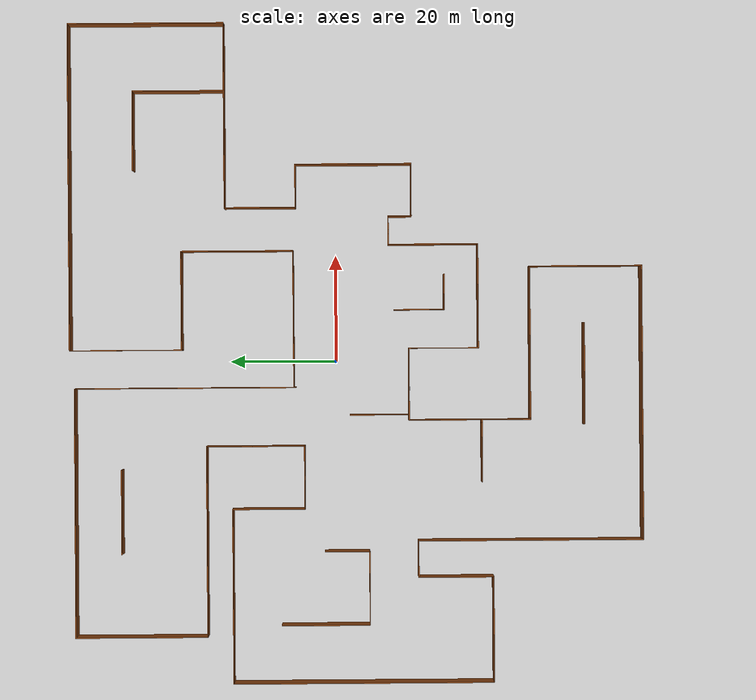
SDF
<sdf version="1.7">
 <world name="default">
  <light name="sun" type="directional">
   <pose>0 0 10 0 0 0</pose>
   <diffuse>1 1 1 1</diffuse>
   <specular>0.5 0.5 0.5 1</specular>
   <attenuation>
    <range>1000</range>
    <constant>1.0</constant>
    <linear>0.0</linear>
    <quadratic>0.0001</quadratic>
   </attenuation>
   <direction>-0.5 0.1 -0.9</direction>
  </light>
  <model name="ground_plane">
   <static>true</static>
   <link name="link">
    <collision name="collision">
     <geometry><plane><normal>0 0 1</normal><size>100 100</size></plane></geometry>
    </collision>
    <visual name="visual">
     <geometry><plane><normal>0 0 1</normal><size>100 100</size></plane></geometry>
     <material>
      <ambient>0.7 0.7 0.7 1</ambient>
      <diffuse>0.8 0.8 0.8 1</diffuse>
      <specular>0.3 0.3 0.3 1</specular>
     </material>
    </visual>
   </link>
  </model>
  <gravity>0 0 -9.8</gravity>
  <magnetic_field>6e-06 2.3e-05 -4.2e-05</magnetic_field>
  <atmosphere type="adiabatic"/>
  <scene><ambient>0.4 0.4 0.4 1</ambient><background>0.7 0.7 0.7 1</background><shadows>1</shadows></scene>
  <audio><device>default</device></audio>
  <spherical_coordinates>
   <surface_model>EARTH_WGS84</surface_model>
   <latitude_deg>0</latitude_deg>
   <longitude_deg>0</longitude_deg>
   <elevation>0</elevation>
   <heading_deg>0</heading_deg>
  </spherical_coordinates>
  <model name="Untitled">
   <pose>1.63712 -3.71741 0 0 -0 0</pose>
   <link name="Wall_0">
    <collision name="Wall_0_Collision">
     <geometry><box><size>13.25 0.15 2.5</size></box></geometry>
     <pose>0 0 1.25 0 -0 0</pose>
    </collision>
    <visual name="Wall_0_Visual">
     <pose>0 0 1.25 0 -0 0</pose>
     <geometry><box><size>13.25 0.15 2.5</size></box></geometry>
     <material>
      <ambient>0.55 0.27 0.07 1</ambient>
      <diffuse>0.55 0.27 0.07 1</diffuse>
      <specular>0.2 0.2 0.2 1</specular>
      <emissive>0 0 0 1</emissive>
     </material>
     <meta><layer>0</layer></meta>
    </visual>
    <pose>0.725003 -16.55 0 0 -0 -1.5708</pose>
   </link>
   <link name="Wall_1">
    <collision name="Wall_1_Collision">
     <geometry><box><size>19.75 0.15 2.5</size></box></geometry>
     <pose>0 0 1.25 0 -0 0</pose>
    </collision>
    <visual name="Wall_1_Visual">
     <pose>0 0 1.25 0 -0 0</pose>
     <geometry><box><size>19.75 0.15 2.5</size></box></geometry>
     <material>
      <ambient>0.55 0.27 0.07 1</ambient>
      <diffuse>0.55 0.27 0.07 1</diffuse>
      <specular>0.2 0.2 0.2 1</specular>
      <emissive>0 0 0 1</emissive>
     </material>
     <meta><layer>0</layer></meta>
    </visual>
    <pose>10.525 -23.1 0 0 -0 0</pose>
   </link>
   <link name="Wall_10">
    <collision name="Wall_10_Collision">
     <geometry><box><size>29.5 0.15 2.5</size></box></geometry>
     <pose>0 0 1.25 0 -0 0</pose>
    </collision>
    <visual name="Wall_10_Visual">
     <pose>0 0 1.25 0 -0 0</pose>
     <geometry><box><size>29.5 0.15 2.5</size></box></geometry>
     <material>
      <ambient>0.55 0.27 0.07 1</ambient>
      <diffuse>0.55 0.27 0.07 1</diffuse>
      <specular>0.2 0.2 0.2 1</specular>
      <emissive>0 0 0 1</emissive>
     </material>
     <meta><layer>0</layer></meta>
    </visual>
    <pose>62.275 39.275 0 0 -0 1.5708</pose>
   </link>
   <link name="Wall_11">
    <collision name="Wall_11_Collision">
     <geometry><box><size>61.75 0.15 2.5</size></box></geometry>
     <pose>0 0 1.25 0 -0 0</pose>
    </collision>
    <visual name="Wall_11_Visual">
     <pose>0 0 1.25 0 -0 0</pose>
     <geometry><box><size>61.75 0.15 2.5</size></box></geometry>
     <material>
      <ambient>0.55 0.27 0.07 1</ambient>
      <diffuse>0.55 0.27 0.07 1</diffuse>
      <specular>0.2 0.2 0.2 1</specular>
      <emissive>0 0 0 1</emissive>
     </material>
     <meta><layer>0</layer></meta>
    </visual>
    <pose>31.475 53.95 0 0 -0 3.14159</pose>
   </link>
   <link name="Wall_12">
    <collision name="Wall_12_Collision">
     <geometry><box><size>21.25 0.15 2.5</size></box></geometry>
     <pose>0 0 1.25 0 -0 0</pose>
    </collision>
    <visual name="Wall_12_Visual">
     <pose>0 0 1.25 0 -0 0</pose>
     <geometry><box><size>21.25 0.15 2.5</size></box></geometry>
     <material>
      <ambient>0.55 0.27 0.07 1</ambient>
      <diffuse>0.55 0.27 0.07 1</diffuse>
      <specular>0.2 0.2 0.2 1</specular>
      <emissive>0 0 0 1</emissive>
     </material>
     <meta><layer>0</layer></meta>
    </visual>
    <pose>0.675003 43.4 0 0 -0 -1.5708</pose>
   </link>
   <link name="Wall_13">
    <collision name="Wall_13_Collision">
     <geometry><box><size>18.75 0.15 2.5</size></box></geometry>
     <pose>0 0 1.25 0 -0 0</pose>
    </collision>
    <visual name="Wall_13_Visual">
     <pose>0 0 1.25 0 -0 0</pose>
     <geometry><box><size>18.75 0.15 2.5</size></box></geometry>
     <material>
      <ambient>0.55 0.27 0.07 1</ambient>
      <diffuse>0.55 0.27 0.07 1</diffuse>
      <specular>0.2 0.2 0.2 1</specular>
      <emissive>0 0 0 1</emissive>
     </material>
     <meta><layer>0</layer></meta>
    </visual>
    <pose>9.975 32.85 0 0 -0 0</pose>
   </link>
   <link name="Wall_14">
    <collision name="Wall_14_Collision">
     <geometry><box><size>21.25 0.15 2.5</size></box></geometry>
     <pose>0 0 1.25 0 -0 0</pose>
    </collision>
    <visual name="Wall_14_Visual">
     <pose>0 0 1.25 0 -0 0</pose>
     <geometry><box><size>21.25 0.15 2.5</size></box></geometry>
     <material>
      <ambient>0.55 0.27 0.07 1</ambient>
      <diffuse>0.55 0.27 0.07 1</diffuse>
      <specular>0.2 0.2 0.2 1</specular>
      <emissive>0 0 0 1</emissive>
     </material>
     <meta><layer>0</layer></meta>
    </visual>
    <pose>19.275 22.3 0 0 -0 -1.5708</pose>
   </link>
   <link name="Wall_15">
    <collision name="Wall_15_Collision">
     <geometry><box><size>25.9491 0.15 2.5</size></box></geometry>
     <pose>0 0 1.25 0 -0 0</pose>
    </collision>
    <visual name="Wall_15_Visual">
     <pose>0 0 1.25 0 -0 0</pose>
     <geometry><box><size>25.9491 0.15 2.5</size></box></geometry>
     <material>
      <ambient>0.55 0.27 0.07 1</ambient>
      <diffuse>0.55 0.27 0.07 1</diffuse>
      <specular>0.2 0.2 0.2 1</specular>
      <emissive>0 0 0 1</emissive>
     </material>
     <meta><layer>0</layer></meta>
    </visual>
    <pose>6.37547 11.7348 0 0 -0 -3.14041</pose>
   </link>
   <link name="Wall_16">
    <collision name="Wall_16_Collision">
     <geometry><box><size>41.5 0.15 2.5</size></box></geometry>
     <pose>0 0 1.25 0 -0 0</pose>
    </collision>
    <visual name="Wall_16_Visual">
     <pose>0 0 1.25 0 -0 0</pose>
     <geometry><box><size>41.5 0.15 2.5</size></box></geometry>
     <material>
      <ambient>0.55 0.27 0.07 1</ambient>
      <diffuse>0.55 0.27 0.07 1</diffuse>
      <specular>0.2 0.2 0.2 1</specular>
      <emissive>0 0 0 1</emissive>
     </material>
     <meta><layer>0</layer></meta>
    </visual>
    <pose>-6.52407 32.0654 0 0 -0 1.5708</pose>
   </link>
   <link name="Wall_17">
    <collision name="Wall_17_Collision">
     <geometry><box><size>47.0509 0.15 2.5</size></box></geometry>
     <pose>0 0 1.25 0 -0 0</pose>
    </collision>
    <visual name="Wall_17_Visual">
     <pose>0 0 1.25 0 -0 0</pose>
     <geometry><box><size>47.0509 0.15 2.5</size></box></geometry>
     <material>
      <ambient>0.55 0.27 0.07 1</ambient>
      <diffuse>0.55 0.27 0.07 1</diffuse>
      <specular>0.2 0.2 0.2 1</specular>
      <emissive>0 0 0 1</emissive>
     </material>
     <meta><layer>0</layer></meta>
    </visual>
    <pose>-29.9745 53.0848 0 0 -0 3.14094</pose>
   </link>
   <link name="Wall_176">
    <collision name="Wall_176_Collision">
     <geometry><box><size>9.5 0.15 2.5</size></box></geometry>
     <pose>0 0 1.25 0 -0 0</pose>
    </collision>
    <visual name="Wall_176_Visual">
     <pose>0 0 1.25 0 -0 0</pose>
     <geometry><box><size>9.5 0.15 2.5</size></box></geometry>
     <material>
      <ambient>0.55 0.27 0.07 1</ambient>
      <diffuse>0.55 0.27 0.07 1</diffuse>
      <specular>0.2 0.2 0.2 1</specular>
      <emissive>0 0 0 1</emissive>
     </material>
     <meta><layer>0</layer></meta>
    </visual>
    <pose>8.00819 -12.0175 0 0 -0 -1.5708</pose>
   </link>
   <link name="Wall_177">
    <collision name="Wall_177_Collision">
     <geometry><box><size>6.75 0.15 2.5</size></box></geometry>
     <pose>0 0 1.25 0 -0 0</pose>
    </collision>
    <visual name="Wall_177_Visual">
     <pose>0 0 1.25 0 -0 0</pose>
     <geometry><box><size>6.75 0.15 2.5</size></box></geometry>
     <material>
      <ambient>0.55 0.27 0.07 1</ambient>
      <diffuse>0.55 0.27 0.07 1</diffuse>
      <specular>0.2 0.2 0.2 1</specular>
      <emissive>0 0 0 1</emissive>
     </material>
     <meta><layer>0</layer></meta>
    </visual>
    <pose>11.3082 -16.6925 0 0 -0 0</pose>
   </link>
   <link name="Wall_179">
    <collision name="Wall_179_Collision">
     <geometry><box><size>8.5 0.15 2.5</size></box></geometry>
     <pose>0 0 1.25 0 -0 0</pose>
    </collision>
    <visual name="Wall_179_Visual">
     <pose>0 0 1.25 0 -0 0</pose>
     <geometry><box><size>8.5 0.15 2.5</size></box></geometry>
     <material>
      <ambient>0.55 0.27 0.07 1</ambient>
      <diffuse>0.55 0.27 0.07 1</diffuse>
      <specular>0.2 0.2 0.2 1</specular>
      <emissive>0 0 0 1</emissive>
     </material>
     <meta><layer>0</layer></meta>
    </visual>
    <pose>-37.5082 1.79861 0 0 -0 -1.5708</pose>
   </link>
   <link name="Wall_18">
    <collision name="Wall_18_Collision">
     <geometry><box><size>25 0.15 2.5</size></box></geometry>
     <pose>0 0 1.25 0 -0 0</pose>
    </collision>
    <visual name="Wall_18_Visual">
     <pose>0 0 1.25 0 -0 0</pose>
     <geometry><box><size>25 0.15 2.5</size></box></geometry>
     <material>
      <ambient>0.55 0.27 0.07 1</ambient>
      <diffuse>0.55 0.27 0.07 1</diffuse>
      <specular>0.2 0.2 0.2 1</specular>
      <emissive>0 0 0 1</emissive>
     </material>
     <meta><layer>0</layer></meta>
    </visual>
    <pose>-53.425 40.675 0 0 -0 -1.5708</pose>
   </link>
   <link name="Wall_180">
    <collision name="Wall_180_Collision">
     <geometry><box><size>14 0.15 2.5</size></box></geometry>
     <pose>0 0 1.25 0 -0 0</pose>
    </collision>
    <visual name="Wall_180_Visual">
     <pose>0 0 1.25 0 -0 0</pose>
     <geometry><box><size>14 0.15 2.5</size></box></geometry>
     <material>
      <ambient>0.55 0.27 0.07 1</ambient>
      <diffuse>0.55 0.27 0.07 1</diffuse>
      <specular>0.2 0.2 0.2 1</specular>
      <emissive>0 0 0 1</emissive>
     </material>
     <meta><layer>0</layer></meta>
    </visual>
    <pose>-44.4332 -2.37639 0 0 -0 3.14159</pose>
   </link>
   <link name="Wall_181">
    <collision name="Wall_181_Collision">
     <geometry><box><size>16.75 0.15 2.5</size></box></geometry>
     <pose>0 0 1.25 0 -0 0</pose>
    </collision>
    <visual name="Wall_181_Visual">
     <pose>0 0 1.25 0 -0 0</pose>
     <geometry><box><size>16.75 0.15 2.5</size></box></geometry>
     <material>
      <ambient>0.55 0.27 0.07 1</ambient>
      <diffuse>0.55 0.27 0.07 1</diffuse>
      <specular>0.2 0.2 0.2 1</specular>
      <emissive>0 0 0 1</emissive>
     </material>
     <meta><layer>0</layer></meta>
    </visual>
    <pose>-51.3582 5.92361 0 0 -0 1.5708</pose>
   </link>
   <link name="Wall_183">
    <collision name="Wall_183_Collision">
     <geometry><box><size>19.25 0.15 2.5</size></box></geometry>
     <pose>0 0 1.25 0 -0 0</pose>
    </collision>
    <visual name="Wall_183_Visual">
     <pose>0 0 1.25 0 -0 0</pose>
     <geometry><box><size>19.25 0.15 2.5</size></box></geometry>
     <material>
      <ambient>0.55 0.27 0.07 1</ambient>
      <diffuse>0.55 0.27 0.07 1</diffuse>
      <specular>0.2 0.2 0.2 1</specular>
      <emissive>0 0 0 1</emissive>
     </material>
     <meta><layer>0</layer></meta>
    </visual>
    <pose>-4.2257 -43.0758 0 0 -0 0</pose>
   </link>
   <link name="Wall_185">
    <collision name="Wall_185_Collision">
     <geometry><box><size>16 0.15 2.5</size></box></geometry>
     <pose>0 0 1.25 0 -0 0</pose>
    </collision>
    <visual name="Wall_185_Visual">
     <pose>0 0 1.25 0 -0 0</pose>
     <geometry><box><size>16 0.15 2.5</size></box></geometry>
     <material>
      <ambient>0.55 0.27 0.07 1</ambient>
      <diffuse>0.55 0.27 0.07 1</diffuse>
      <specular>0.2 0.2 0.2 1</specular>
      <emissive>0 0 0 1</emissive>
     </material>
     <meta><layer>0</layer></meta>
    </visual>
    <pose>-29.8396 44.3313 0 0 -0 3.14159</pose>
   </link>
   <link name="Wall_187">
    <collision name="Wall_187_Collision">
     <geometry><box><size>15 0.15 2.5</size></box></geometry>
     <pose>0 0 1.25 0 -0 0</pose>
    </collision>
    <visual name="Wall_187_Visual">
     <pose>0 0 1.25 0 -0 0</pose>
     <geometry><box><size>15 0.15 2.5</size></box></geometry>
     <material>
      <ambient>0.55 0.27 0.07 1</ambient>
      <diffuse>0.55 0.27 0.07 1</diffuse>
      <specular>0.2 0.2 0.2 1</specular>
      <emissive>0 0 0 1</emissive>
     </material>
     <meta><layer>0</layer></meta>
    </visual>
    <pose>42.0845 41.828 0 0 -0 0</pose>
   </link>
   <link name="Wall_188">
    <collision name="Wall_188_Collision">
     <geometry><box><size>17.25 0.15 2.5</size></box></geometry>
     <pose>0 0 1.25 0 -0 0</pose>
    </collision>
    <visual name="Wall_188_Visual">
     <pose>0 0 1.25 0 -0 0</pose>
     <geometry><box><size>17.25 0.15 2.5</size></box></geometry>
     <material>
      <ambient>0.55 0.27 0.07 1</ambient>
      <diffuse>0.55 0.27 0.07 1</diffuse>
      <specular>0.2 0.2 0.2 1</specular>
      <emissive>0 0 0 1</emissive>
     </material>
     <meta><layer>0</layer></meta>
    </visual>
    <pose>49.5095 33.278 0 0 -0 -1.5708</pose>
   </link>
   <link name="Wall_19">
    <collision name="Wall_19_Collision">
     <geometry><box><size>36 0.15 2.5</size></box></geometry>
     <pose>0 0 1.25 0 -0 0</pose>
    </collision>
    <visual name="Wall_19_Visual">
     <pose>0 0 1.25 0 -0 0</pose>
     <geometry><box><size>36 0.15 2.5</size></box></geometry>
     <material>
      <ambient>0.55 0.27 0.07 1</ambient>
      <diffuse>0.55 0.27 0.07 1</diffuse>
      <specular>0.2 0.2 0.2 1</specular>
      <emissive>0 0 0 1</emissive>
     </material>
     <meta><layer>0</layer></meta>
    </visual>
    <pose>-35.5 28.25 0 0 -0 0</pose>
   </link>
   <link name="Wall_191">
    <collision name="Wall_191_Collision">
     <geometry><box><size>11.25 0.15 2.5</size></box></geometry>
     <pose>0 0 1.25 0 -0 0</pose>
    </collision>
    <visual name="Wall_191_Visual">
     <pose>0 0 1.25 0 -0 0</pose>
     <geometry><box><size>11.25 0.15 2.5</size></box></geometry>
     <material>
      <ambient>0.55 0.27 0.07 1</ambient>
      <diffuse>0.55 0.27 0.07 1</diffuse>
      <specular>0.2 0.2 0.2 1</specular>
      <emissive>0 0 0 1</emissive>
     </material>
     <meta><layer>0</layer></meta>
    </visual>
    <pose>-18.9454 -23.6885 0 0 -0 0</pose>
   </link>
   <link name="Wall_192">
    <collision name="Wall_192_Collision">
     <geometry><box><size>0.75 0.15 2.5</size></box></geometry>
     <pose>0 0 1.25 0 -0 0</pose>
    </collision>
    <visual name="Wall_192_Visual">
     <pose>0 0 1.25 0 -0 0</pose>
     <geometry><box><size>0.75 0.15 2.5</size></box></geometry>
     <material>
      <ambient>0.55 0.27 0.07 1</ambient>
      <diffuse>0.55 0.27 0.07 1</diffuse>
      <specular>0.2 0.2 0.2 1</specular>
      <emissive>0 0 0 1</emissive>
     </material>
     <meta><layer>0</layer></meta>
    </visual>
    <pose>-13.0954 -23.6885 0 0 -0 0</pose>
   </link>
   <link name="Wall_195">
    <collision name="Wall_195_Collision">
     <geometry><box><size>11 0.15 2.5</size></box></geometry>
     <pose>0 0 1.25 0 -0 0</pose>
    </collision>
    <visual name="Wall_195_Visual">
     <pose>0 0 1.25 0 -0 0</pose>
     <geometry><box><size>11 0.15 2.5</size></box></geometry>
     <material>
      <ambient>0.55 0.27 0.07 1</ambient>
      <diffuse>0.55 0.27 0.07 1</diffuse>
      <specular>0.2 0.2 0.2 1</specular>
      <emissive>0 0 0 1</emissive>
     </material>
     <meta><layer>0</layer></meta>
    </visual>
    <pose>-11.7848 -4.35184 0 0 -0 1.5708</pose>
   </link>
   <link name="Wall_2">
    <collision name="Wall_2_Collision">
     <geometry><box><size>17 0.15 2.5</size></box></geometry>
     <pose>0 0 1.25 0 -0 0</pose>
    </collision>
    <visual name="Wall_2_Visual">
     <pose>0 0 1.25 0 -0 0</pose>
     <geometry><box><size>17 0.15 2.5</size></box></geometry>
     <material>
      <ambient>0.55 0.27 0.07 1</ambient>
      <diffuse>0.55 0.27 0.07 1</diffuse>
      <specular>0.2 0.2 0.2 1</specular>
      <emissive>0 0 0 1</emissive>
     </material>
     <meta><layer>0</layer></meta>
    </visual>
    <pose>20.325 -14.675 0 0 -0 1.5708</pose>
   </link>
   <link name="Wall_20">
    <collision name="Wall_20_Collision">
     <geometry><box><size>8.75 0.15 2.5</size></box></geometry>
     <pose>0 0 1.25 0 -0 0</pose>
    </collision>
    <visual name="Wall_20_Visual">
     <pose>0 0 1.25 0 -0 0</pose>
     <geometry><box><size>8.75 0.15 2.5</size></box></geometry>
     <material>
      <ambient>0.55 0.27 0.07 1</ambient>
      <diffuse>0.55 0.27 0.07 1</diffuse>
      <specular>0.2 0.2 0.2 1</specular>
      <emissive>0 0 0 1</emissive>
     </material>
     <meta><layer>0</layer></meta>
    </visual>
    <pose>-17.575 23.95 0 0 -0 -1.5708</pose>
   </link>
   <link name="Wall_21">
    <collision name="Wall_21_Collision">
     <geometry><box><size>10 0.15 2.5</size></box></geometry>
     <pose>0 0 1.25 0 -0 0</pose>
    </collision>
    <visual name="Wall_21_Visual">
     <pose>0 0 1.25 0 -0 0</pose>
     <geometry><box><size>10 0.15 2.5</size></box></geometry>
     <material>
      <ambient>0.55 0.27 0.07 1</ambient>
      <diffuse>0.55 0.27 0.07 1</diffuse>
      <specular>0.2 0.2 0.2 1</specular>
      <emissive>0 0 0 1</emissive>
     </material>
     <meta><layer>0</layer></meta>
    </visual>
    <pose>-17.575 14.725 0 0 -0 -1.5708</pose>
   </link>
   <link name="Wall_22">
    <pose>-23.5 9.8 0 0 -0 3.14159</pose>
    <visual name="Wall_22_Visual_0">
     <pose>-3.0799 0 1.25 0 -0 0</pose>
     <geometry><box><size>5.84019 0.15 2.5</size></box></geometry>
     <material>
      <ambient>0.55 0.27 0.07 1</ambient>
      <diffuse>0.55 0.27 0.07 1</diffuse>
      <specular>0.2 0.2 0.2 1</specular>
      <emissive>0 0 0 1</emissive>
     </material>
     <meta><layer>0</layer></meta>
    </visual>
    <collision name="Wall_22_Collision_0">
     <geometry><box><size>5.84019 0.15 2.5</size></box></geometry>
     <pose>-3.0799 0 1.25 0 -0 0</pose>
    </collision>
    <visual name="Wall_22_Visual_1">
     <pose>2.9201 0 0.25 0 -0 0</pose>
     <geometry><box><size>6.15981 0.15 0.5</size></box></geometry>
     <material>
      <ambient>0.55 0.27 0.07 1</ambient>
      <diffuse>0.55 0.27 0.07 1</diffuse>
      <specular>0.2 0.2 0.2 1</specular>
      <emissive>0 0 0 1</emissive>
     </material>
     <meta><layer>0</layer></meta>
    </visual>
    <collision name="Wall_22_Collision_1">
     <geometry><box><size>6.15981 0.15 0.5</size></box></geometry>
     <pose>2.9201 0 0.25 0 -0 0</pose>
    </collision>
    <visual name="Wall_22_Visual_2">
     <pose>3.3201 0 1.5 0 -0 0</pose>
     <geometry><box><size>5.35981 0.15 2</size></box></geometry>
     <material>
      <ambient>0.55 0.27 0.07 1</ambient>
      <diffuse>0.55 0.27 0.07 1</diffuse>
      <specular>0.2 0.2 0.2 1</specular>
      <emissive>0 0 0 1</emissive>
     </material>
     <meta><layer>0</layer></meta>
    </visual>
    <collision name="Wall_22_Collision_2">
     <geometry><box><size>5.35981 0.15 2</size></box></geometry>
     <pose>3.3201 0 1.5 0 -0 0</pose>
    </collision>
    <visual name="Wall_22_Visual_3">
     <pose>0.240194 0 1.9 0 -0 0</pose>
     <geometry><box><size>0.8 0.15 1.2</size></box></geometry>
     <material>
      <ambient>0.55 0.27 0.07 1</ambient>
      <diffuse>0.55 0.27 0.07 1</diffuse>
      <specular>0.2 0.2 0.2 1</specular>
      <emissive>0 0 0 1</emissive>
     </material>
     <meta><layer>0</layer></meta>
    </visual>
    <collision name="Wall_22_Collision_3">
     <geometry><box><size>0.8 0.15 1.2</size></box></geometry>
     <pose>0.240194 0 1.9 0 -0 0</pose>
    </collision>
   </link>
   <link name="Wall_23">
    <collision name="Wall_23_Collision">
     <geometry><box><size>13.75 0.15 2.5</size></box></geometry>
     <pose>0 0 1.25 0 -0 0</pose>
    </collision>
    <visual name="Wall_23_Visual">
     <pose>0 0 1.25 0 -0 0</pose>
     <geometry><box><size>13.75 0.15 2.5</size></box></geometry>
     <material>
      <ambient>0.55 0.27 0.07 1</ambient>
      <diffuse>0.55 0.27 0.07 1</diffuse>
      <specular>0.2 0.2 0.2 1</specular>
      <emissive>0 0 0 1</emissive>
     </material>
     <meta><layer>0</layer></meta>
    </visual>
    <pose>-29.425 16.6 0 0 -0 1.5708</pose>
   </link>
   <link name="Wall_24">
    <collision name="Wall_24_Collision">
     <geometry><box><size>33 0.15 2.5</size></box></geometry>
     <pose>0 0 1.25 0 -0 0</pose>
    </collision>
    <visual name="Wall_24_Visual">
     <pose>0 0 1.25 0 -0 0</pose>
     <geometry><box><size>33 0.15 2.5</size></box></geometry>
     <material>
      <ambient>0.55 0.27 0.07 1</ambient>
      <diffuse>0.55 0.27 0.07 1</diffuse>
      <specular>0.2 0.2 0.2 1</specular>
      <emissive>0 0 0 1</emissive>
     </material>
     <meta><layer>0</layer></meta>
    </visual>
    <pose>-45.85 23.4 0 0 -0 3.14159</pose>
   </link>
   <link name="Wall_25">
    <collision name="Wall_25_Collision">
     <geometry><box><size>49.25 0.15 2.5</size></box></geometry>
     <pose>0 0 1.25 0 -0 0</pose>
    </collision>
    <visual name="Wall_25_Visual">
     <pose>0 0 1.25 0 -0 0</pose>
     <geometry><box><size>49.25 0.15 2.5</size></box></geometry>
     <material>
      <ambient>0.55 0.27 0.07 1</ambient>
      <diffuse>0.55 0.27 0.07 1</diffuse>
      <specular>0.2 0.2 0.2 1</specular>
      <emissive>0 0 0 1</emissive>
     </material>
     <meta><layer>0</layer></meta>
    </visual>
    <pose>-62.275 -1.15 0 0 -0 -1.5708</pose>
   </link>
   <link name="Wall_26">
    <collision name="Wall_26_Collision">
     <geometry><box><size>20 0.15 2.5</size></box></geometry>
     <pose>0 0 1.25 0 -0 0</pose>
    </collision>
    <visual name="Wall_26_Visual">
     <pose>0 0 1.25 0 -0 0</pose>
     <geometry><box><size>20 0.15 2.5</size></box></geometry>
     <material>
      <ambient>0.55 0.27 0.07 1</ambient>
      <diffuse>0.55 0.27 0.07 1</diffuse>
      <specular>0.2 0.2 0.2 1</specular>
      <emissive>0 0 0 1</emissive>
     </material>
     <meta><layer>0</layer></meta>
    </visual>
    <pose>-52.35 -25.7 0 0 -0 0</pose>
   </link>
   <link name="Wall_27">
    <collision name="Wall_27_Collision">
     <geometry><box><size>14.25 0.15 2.5</size></box></geometry>
     <pose>0 0 1.25 0 -0 0</pose>
    </collision>
    <visual name="Wall_27_Visual">
     <pose>0 0 1.25 0 -0 0</pose>
     <geometry><box><size>14.25 0.15 2.5</size></box></geometry>
     <material>
      <ambient>0.55 0.27 0.07 1</ambient>
      <diffuse>0.55 0.27 0.07 1</diffuse>
      <specular>0.2 0.2 0.2 1</specular>
      <emissive>0 0 0 1</emissive>
     </material>
     <meta><layer>0</layer></meta>
    </visual>
    <pose>-42.425 -18.65 0 0 -0 1.5708</pose>
   </link>
   <link name="Wall_28">
    <collision name="Wall_28_Collision">
     <geometry><box><size>7 0.15 2.5</size></box></geometry>
     <pose>0 0 1.25 0 -0 0</pose>
    </collision>
    <visual name="Wall_28_Visual">
     <pose>0 0 1.25 0 -0 0</pose>
     <geometry><box><size>7 0.15 2.5</size></box></geometry>
     <material>
      <ambient>0.55 0.27 0.07 1</ambient>
      <diffuse>0.55 0.27 0.07 1</diffuse>
      <specular>0.2 0.2 0.2 1</specular>
      <emissive>0 0 0 1</emissive>
     </material>
     <meta><layer>0</layer></meta>
    </visual>
    <pose>-39 -11.6 0 0 -0 0</pose>
   </link>
   <link name="Wall_29">
    <collision name="Wall_29_Collision">
     <geometry><box><size>42.5 0.15 2.5</size></box></geometry>
     <pose>0 0 1.25 0 -0 0</pose>
    </collision>
    <visual name="Wall_29_Visual">
     <pose>0 0 1.25 0 -0 0</pose>
     <geometry><box><size>42.5 0.15 2.5</size></box></geometry>
     <material>
      <ambient>0.55 0.27 0.07 1</ambient>
      <diffuse>0.55 0.27 0.07 1</diffuse>
      <specular>0.2 0.2 0.2 1</specular>
      <emissive>0 0 0 1</emissive>
     </material>
     <meta><layer>0</layer></meta>
    </visual>
    <pose>-35.575 -32.775 0 0 -0 -1.5708</pose>
   </link>
   <link name="Wall_3">
    <pose>23 -6.25 0 0 -0 0</pose>
    <visual name="Wall_3_Visual_0">
     <pose>-1.73706 0 1.25 0 -0 0</pose>
     <geometry><box><size>2.02588 0.15 2.5</size></box></geometry>
     <material>
      <ambient>0.55 0.27 0.07 1</ambient>
      <diffuse>0.55 0.27 0.07 1</diffuse>
      <specular>0.2 0.2 0.2 1</specular>
      <emissive>0 0 0 1</emissive>
     </material>
     <meta><layer>0</layer></meta>
    </visual>
    <collision name="Wall_3_Collision_0">
     <geometry><box><size>2.02588 0.15 2.5</size></box></geometry>
     <pose>-1.73706 0 1.25 0 -0 0</pose>
    </collision>
    <visual name="Wall_3_Visual_1">
     <pose>1.01294 0 0.25 0 -0 0</pose>
     <geometry><box><size>3.47412 0.15 0.5</size></box></geometry>
     <material>
      <ambient>0.55 0.27 0.07 1</ambient>
      <diffuse>0.55 0.27 0.07 1</diffuse>
      <specular>0.2 0.2 0.2 1</specular>
      <emissive>0 0 0 1</emissive>
     </material>
     <meta><layer>0</layer></meta>
    </visual>
    <collision name="Wall_3_Collision_1">
     <geometry><box><size>3.47412 0.15 0.5</size></box></geometry>
     <pose>1.01294 0 0.25 0 -0 0</pose>
    </collision>
    <visual name="Wall_3_Visual_2">
     <pose>1.41294 0 1.5 0 -0 0</pose>
     <geometry><box><size>2.67412 0.15 2</size></box></geometry>
     <material>
      <ambient>0.55 0.27 0.07 1</ambient>
      <diffuse>0.55 0.27 0.07 1</diffuse>
      <specular>0.2 0.2 0.2 1</specular>
      <emissive>0 0 0 1</emissive>
     </material>
     <meta><layer>0</layer></meta>
    </visual>
    <collision name="Wall_3_Collision_2">
     <geometry><box><size>2.67412 0.15 2</size></box></geometry>
     <pose>1.41294 0 1.5 0 -0 0</pose>
    </collision>
    <visual name="Wall_3_Visual_3">
     <pose>-0.324123 0 1.9 0 -0 0</pose>
     <geometry><box><size>0.8 0.15 1.2</size></box></geometry>
     <material>
      <ambient>0.55 0.27 0.07 1</ambient>
      <diffuse>0.55 0.27 0.07 1</diffuse>
      <specular>0.2 0.2 0.2 1</specular>
      <emissive>0 0 0 1</emissive>
     </material>
     <meta><layer>0</layer></meta>
    </visual>
    <collision name="Wall_3_Collision_3">
     <geometry><box><size>0.8 0.15 1.2</size></box></geometry>
     <pose>-0.324123 0 1.9 0 -0 0</pose>
    </collision>
   </link>
   <link name="Wall_30">
    <collision name="Wall_30_Collision">
     <geometry><box><size>51.75 0.15 2.5</size></box></geometry>
     <pose>0 0 1.25 0 -0 0</pose>
    </collision>
    <visual name="Wall_30_Visual">
     <pose>0 0 1.25 0 -0 0</pose>
     <geometry><box><size>51.75 0.15 2.5</size></box></geometry>
     <material>
      <ambient>0.55 0.27 0.07 1</ambient>
      <diffuse>0.55 0.27 0.07 1</diffuse>
      <specular>0.2 0.2 0.2 1</specular>
      <emissive>0 0 0 1</emissive>
     </material>
     <meta><layer>0</layer></meta>
    </visual>
    <pose>-9.775 -53.95 0 0 -0 0</pose>
   </link>
   <link name="Wall_31">
    <collision name="Wall_31_Collision">
     <geometry><box><size>21.25 0.15 2.5</size></box></geometry>
     <pose>0 0 1.25 0 -0 0</pose>
    </collision>
    <visual name="Wall_31_Visual">
     <pose>0 0 1.25 0 -0 0</pose>
     <geometry><box><size>21.25 0.15 2.5</size></box></geometry>
     <material>
      <ambient>0.55 0.27 0.07 1</ambient>
      <diffuse>0.55 0.27 0.07 1</diffuse>
      <specular>0.2 0.2 0.2 1</specular>
      <emissive>0 0 0 1</emissive>
     </material>
     <meta><layer>0</layer></meta>
    </visual>
    <pose>16.025 -43.4 0 0 -0 1.5708</pose>
   </link>
   <link name="Wall_32">
    <collision name="Wall_32_Collision">
     <geometry><box><size>29 0.15 2.5</size></box></geometry>
     <pose>0 0 1.25 0 -0 0</pose>
    </collision>
    <visual name="Wall_32_Visual">
     <pose>0 0 1.25 0 -0 0</pose>
     <geometry><box><size>29 0.15 2.5</size></box></geometry>
     <material>
      <ambient>0.55 0.27 0.07 1</ambient>
      <diffuse>0.55 0.27 0.07 1</diffuse>
      <specular>0.2 0.2 0.2 1</specular>
      <emissive>0 0 0 1</emissive>
     </material>
     <meta><layer>0</layer></meta>
    </visual>
    <pose>1.6 -32.85 0 0 -0 3.14159</pose>
   </link>
   <link name="Wall_33">
    <collision name="Wall_33_Collision">
     <geometry><box><size>23 0.15 2.5</size></box></geometry>
     <pose>0 0 1.25 0 -0 0</pose>
    </collision>
    <visual name="Wall_33_Visual">
     <pose>0 0 1.25 0 -0 0</pose>
     <geometry><box><size>23 0.15 2.5</size></box></geometry>
     <material>
      <ambient>0.55 0.27 0.07 1</ambient>
      <diffuse>0.55 0.27 0.07 1</diffuse>
      <specular>0.2 0.2 0.2 1</specular>
      <emissive>0 0 0 1</emissive>
     </material>
     <meta><layer>0</layer></meta>
    </visual>
    <pose>-12.825 -21.425 0 0 -0 1.5708</pose>
   </link>
   <link name="Wall_34">
    <collision name="Wall_34_Collision">
     <geometry><box><size>13.7 0.15 2.5</size></box></geometry>
     <pose>0 0 1.25 0 -0 0</pose>
    </collision>
    <visual name="Wall_34_Visual">
     <pose>0 0 1.25 0 -0 0</pose>
     <geometry><box><size>13.7 0.15 2.5</size></box></geometry>
     <material>
      <ambient>0.55 0.27 0.07 1</ambient>
      <diffuse>0.55 0.27 0.07 1</diffuse>
      <specular>0.2 0.2 0.2 1</specular>
      <emissive>0 0 0 1</emissive>
     </material>
     <meta><layer>0</layer></meta>
    </visual>
    <pose>-6.05 -10 0 0 -0 0</pose>
   </link>
   <link name="Wall_4">
    <collision name="Wall_4_Collision">
     <geometry><box><size>4.5 0.15 2.5</size></box></geometry>
     <pose>0 0 1.25 0 -0 0</pose>
    </collision>
    <visual name="Wall_4_Visual">
     <pose>0 0 1.25 0 -0 0</pose>
     <geometry><box><size>4.5 0.15 2.5</size></box></geometry>
     <material>
      <ambient>0.55 0.27 0.07 1</ambient>
      <diffuse>0.55 0.27 0.07 1</diffuse>
      <specular>0.2 0.2 0.2 1</specular>
      <emissive>0 0 0 1</emissive>
     </material>
     <meta><layer>0</layer></meta>
    </visual>
    <pose>25.675 -8.425 0 0 -0 -1.5708</pose>
   </link>
   <link name="Wall_5">
    <pose>30.6 -10.6 0 0 -0 0</pose>
    <visual name="Wall_5_Visual_0">
     <pose>-1.75467 0 1.25 0 -0 0</pose>
     <geometry><box><size>6.49066 0.15 2.5</size></box></geometry>
     <material>
      <ambient>0.55 0.27 0.07 1</ambient>
      <diffuse>0.55 0.27 0.07 1</diffuse>
      <specular>0.2 0.2 0.2 1</specular>
      <emissive>0 0 0 1</emissive>
     </material>
     <meta><layer>0</layer></meta>
    </visual>
    <collision name="Wall_5_Collision_0">
     <geometry><box><size>6.49066 0.15 2.5</size></box></geometry>
     <pose>-1.75467 0 1.25 0 -0 0</pose>
    </collision>
    <visual name="Wall_5_Visual_1">
     <pose>3.24533 0 0.25 0 -0 0</pose>
     <geometry><box><size>3.50934 0.15 0.5</size></box></geometry>
     <material>
      <ambient>0.55 0.27 0.07 1</ambient>
      <diffuse>0.55 0.27 0.07 1</diffuse>
      <specular>0.2 0.2 0.2 1</specular>
      <emissive>0 0 0 1</emissive>
     </material>
     <meta><layer>0</layer></meta>
    </visual>
    <collision name="Wall_5_Collision_1">
     <geometry><box><size>3.50934 0.15 0.5</size></box></geometry>
     <pose>3.24533 0 0.25 0 -0 0</pose>
    </collision>
    <visual name="Wall_5_Visual_2">
     <pose>3.64533 0 1.5 0 -0 0</pose>
     <geometry><box><size>2.70934 0.15 2</size></box></geometry>
     <material>
      <ambient>0.55 0.27 0.07 1</ambient>
      <diffuse>0.55 0.27 0.07 1</diffuse>
      <specular>0.2 0.2 0.2 1</specular>
      <emissive>0 0 0 1</emissive>
     </material>
     <meta><layer>0</layer></meta>
    </visual>
    <collision name="Wall_5_Collision_2">
     <geometry><box><size>2.70934 0.15 2</size></box></geometry>
     <pose>3.64533 0 1.5 0 -0 0</pose>
    </collision>
    <visual name="Wall_5_Visual_3">
     <pose>1.89066 0 1.9 0 -0 0</pose>
     <geometry><box><size>0.8 0.15 1.2</size></box></geometry>
     <material>
      <ambient>0.55 0.27 0.07 1</ambient>
      <diffuse>0.55 0.27 0.07 1</diffuse>
      <specular>0.2 0.2 0.2 1</specular>
      <emissive>0 0 0 1</emissive>
     </material>
     <meta><layer>0</layer></meta>
    </visual>
    <collision name="Wall_5_Collision_3">
     <geometry><box><size>0.8 0.15 1.2</size></box></geometry>
     <pose>1.89066 0 1.9 0 -0 0</pose>
    </collision>
   </link>
   <link name="Wall_6">
    <collision name="Wall_6_Collision">
     <geometry><box><size>22 0.15 2.5</size></box></geometry>
     <pose>0 0 1.25 0 -0 0</pose>
    </collision>
    <visual name="Wall_6_Visual">
     <pose>0 0 1.25 0 -0 0</pose>
     <geometry><box><size>22 0.15 2.5</size></box></geometry>
     <material>
      <ambient>0.55 0.27 0.07 1</ambient>
      <diffuse>0.55 0.27 0.07 1</diffuse>
      <specular>0.2 0.2 0.2 1</specular>
      <emissive>0 0 0 1</emissive>
     </material>
     <meta><layer>0</layer></meta>
    </visual>
    <pose>35.525 0.324998 0 0 -0 1.5708</pose>
   </link>
   <link name="Wall_7">
    <collision name="Wall_7_Collision">
     <geometry><box><size>8.25 0.15 2.5</size></box></geometry>
     <pose>0 0 1.25 0 -0 0</pose>
    </collision>
    <visual name="Wall_7_Visual">
     <pose>0 0 1.25 0 -0 0</pose>
     <geometry><box><size>8.25 0.15 2.5</size></box></geometry>
     <material>
      <ambient>0.55 0.27 0.07 1</ambient>
      <diffuse>0.55 0.27 0.07 1</diffuse>
      <specular>0.2 0.2 0.2 1</specular>
      <emissive>0 0 0 1</emissive>
     </material>
     <meta><layer>0</layer></meta>
    </visual>
    <pose>31.475 11.25 0 0 -0 3.14159</pose>
   </link>
   <link name="Wall_8">
    <collision name="Wall_8_Collision">
     <geometry><box><size>13.5 0.15 2.5</size></box></geometry>
     <pose>0 0 1.25 0 -0 0</pose>
    </collision>
    <visual name="Wall_8_Visual">
     <pose>0 0 1.25 0 -0 0</pose>
     <geometry><box><size>13.5 0.15 2.5</size></box></geometry>
     <material>
      <ambient>0.55 0.27 0.07 1</ambient>
      <diffuse>0.55 0.27 0.07 1</diffuse>
      <specular>0.2 0.2 0.2 1</specular>
      <emissive>0 0 0 1</emissive>
     </material>
     <meta><layer>0</layer></meta>
    </visual>
    <pose>27.425 17.925 0 0 -0 1.5708</pose>
   </link>
   <link name="Wall_9">
    <collision name="Wall_9_Collision">
     <geometry><box><size>35 0.15 2.5</size></box></geometry>
     <pose>0 0 1.25 0 -0 0</pose>
    </collision>
    <visual name="Wall_9_Visual">
     <pose>0 0 1.25 0 -0 0</pose>
     <geometry><box><size>35 0.15 2.5</size></box></geometry>
     <material>
      <ambient>0.55 0.27 0.07 1</ambient>
      <diffuse>0.55 0.27 0.07 1</diffuse>
      <specular>0.2 0.2 0.2 1</specular>
      <emissive>0 0 0 1</emissive>
     </material>
     <meta><layer>0</layer></meta>
    </visual>
    <pose>44.85 24.6 0 0 -0 0</pose>
   </link>
   <link name="Window_0">
    <collision name="Window_0_Collision">
     <geometry><box><size>0.8 0.17 0.8</size></box></geometry>
     <pose>0 0 0.4 0 -0 0</pose>
    </collision>
    <visual name="Window_0_Visual">
     <pose>0 0 0.4 0 -0 0</pose>
     <geometry><box><size>0.8 0.17 0.8</size></box></geometry>
     <material>
      <script><uri>file://media/materials/scripts/gazebo.material</uri><name>Gazebo/Grey</name></script>
     </material>
    </visual>
    <pose>-6.91903 -10.0822 0.5 0 -0 0</pose>
   </link>
   <static>1</static>
  </model>
 </world>
</sdf>
